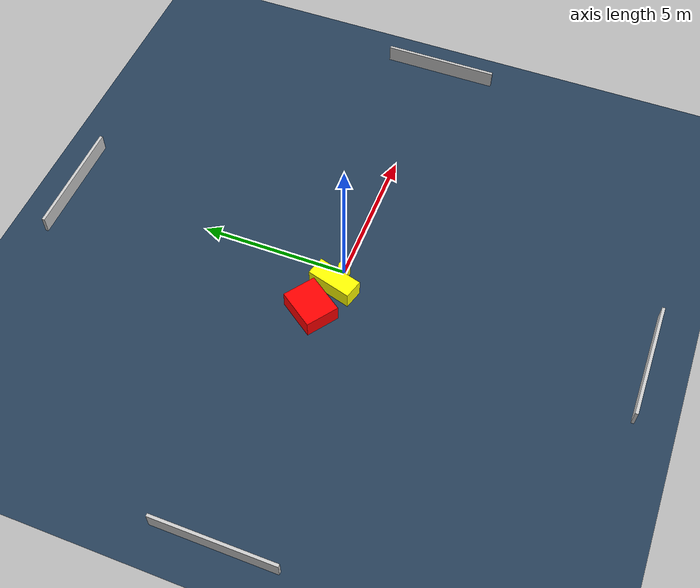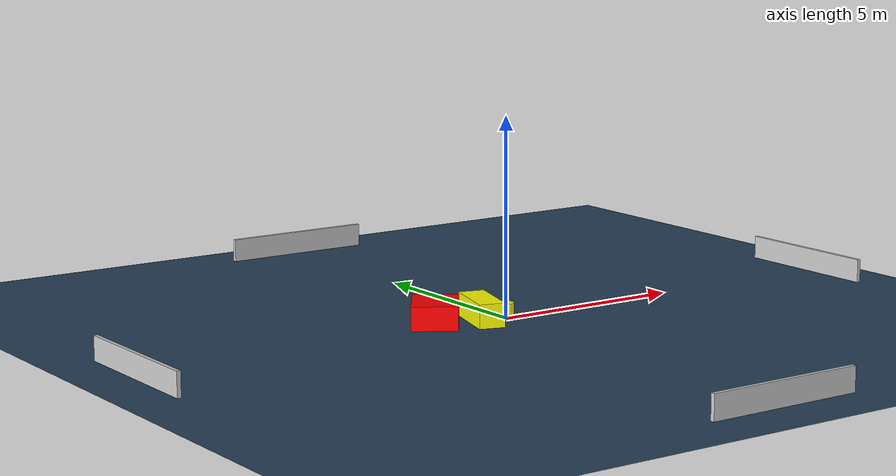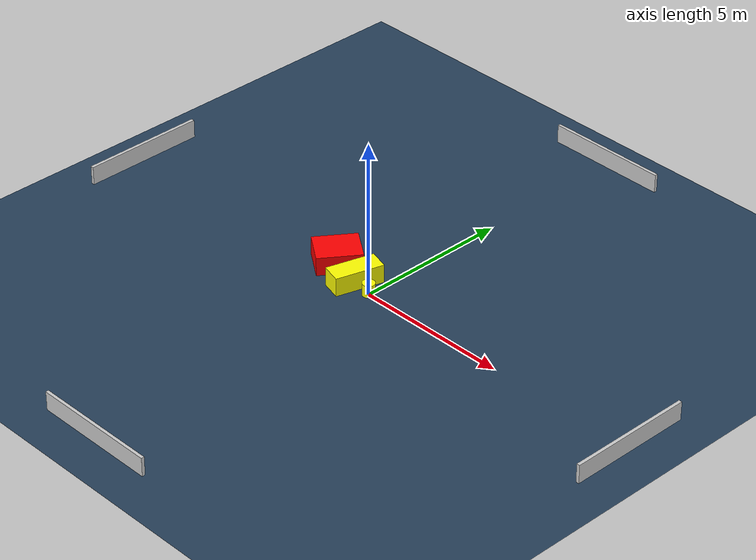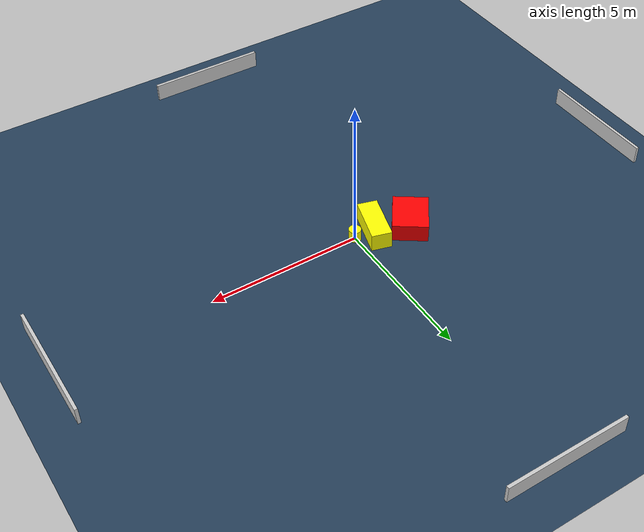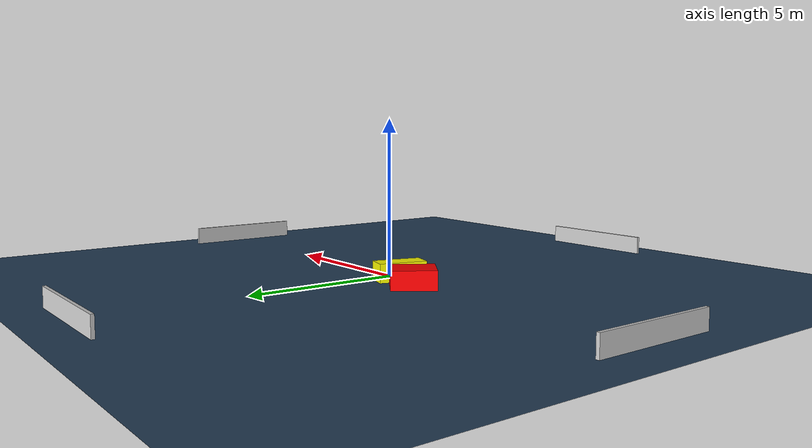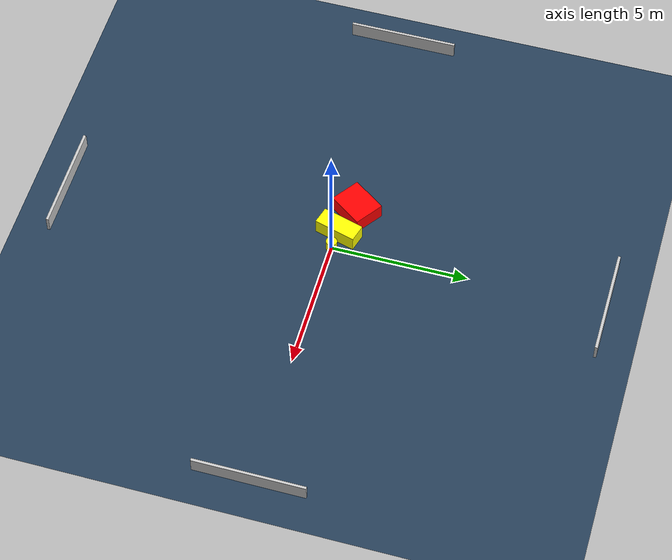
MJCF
<?xml version="1.0" ?>
<mujoco model="generated_environment">
  <option timestep="0.01" integrator="RK4" cone="elliptic"/>
  <default>
    <geom density="1"/>
  </default>
  <asset>
    <texture builtin="gradient" height="3072" name="skybox" rgb1="0.3 0.5 0.7" rgb2="0 0 0" type="skybox" width="512"/>
    <texture builtin="checker" height="300" name="groundplane" rgb1="0.2 0.3 0.4" rgb2="0.1 0.2 0.3" type="2d" width="300"/>
    <material name="groundplane" reflectance="0.2" texrepeat="5 5" texture="groundplane"/>
  </asset>
  <worldbody>
    <light dir="0 0 -1" directional="true" pos="0 0 1.5"/>
    <geom condim="3" friction="0.5 0.005 0.001" material="groundplane" name="floor" pos="0 0 0" size="0 0 0.05" type="plane"/>
    <body name="walls">
      <geom name="wall_1" condim="4" pos="-10.0 0.0 0.3" rgba="0.800000011920929 0.800000011920929 0.800000011920929 1.0" size="0.05 2.0 0.3" type="box"/>
      <geom name="wall_2" condim="4" pos="10.0 0.0 0.3" rgba="0.800000011920929 0.800000011920929 0.800000011920929 1.0" size="0.05 2.0 0.3" type="box"/>
      <geom name="wall_3" condim="4" pos="0.0 -10.0 0.3" rgba="0.800000011920929 0.800000011920929 0.800000011920929 1.0" size="2.0 0.05 0.3" type="box"/>
      <geom name="wall_4" condim="4" pos="0.0 10.0 0.3" rgba="0.800000011920929 0.800000011920929 0.800000011920929 1.0" size="2.0 0.05 0.3" type="box"/>
    </body>
    <body name="robot">
      <joint name="joint_x" type="slide" pos="0 0 0" axis="1 0 0"/>
      <joint name="joint_y" type="slide" pos="0 0 0" axis="0 1 0"/>
      <geom name="robot" type="cylinder" pos="0.0 0.0 0.2" size="0.2 0.2 0.0" mass="5.0" friction="1.0 0.005 0.0001" condim="4" rgba="1.0 1.0 0.0 1.0"/>
    </body>
    <body name="obstacle_1_movable">
      <geom name="obstacle_1_movable" condim="4" pos="-0.6645237185581768 0.08783872526197982 0.3" euler="0 0 74.12916217980025" friction="0.0 0.005 0.001" rgba="1.0 1.0 0.0 1.0" size="0.778089917821555 0.3303924279347099 0.3" type="box" mass="0.1"/>
      <joint type="free"/>
    </body>
    <body name="obstacle_2_static">
      <geom name="obstacle_2_static" condim="4" pos="-1.787227296959078 0.448968729844703 0.3" euler="0 0 234.80377211914941" friction="0.0 0.005 0.001" rgba="1.0 0.0 0.0 1.0" size="0.6979039774912401 0.573422228420438 0.3" type="box"/>
    </body>
  </worldbody>
  <actuator>
    <motor name="actuator_x" joint="joint_x" gear="1" ctrlrange="-1 1"/>
    <motor name="actuator_y" joint="joint_y" gear="1" ctrlrange="-1 1"/>
  </actuator>
</mujoco>
